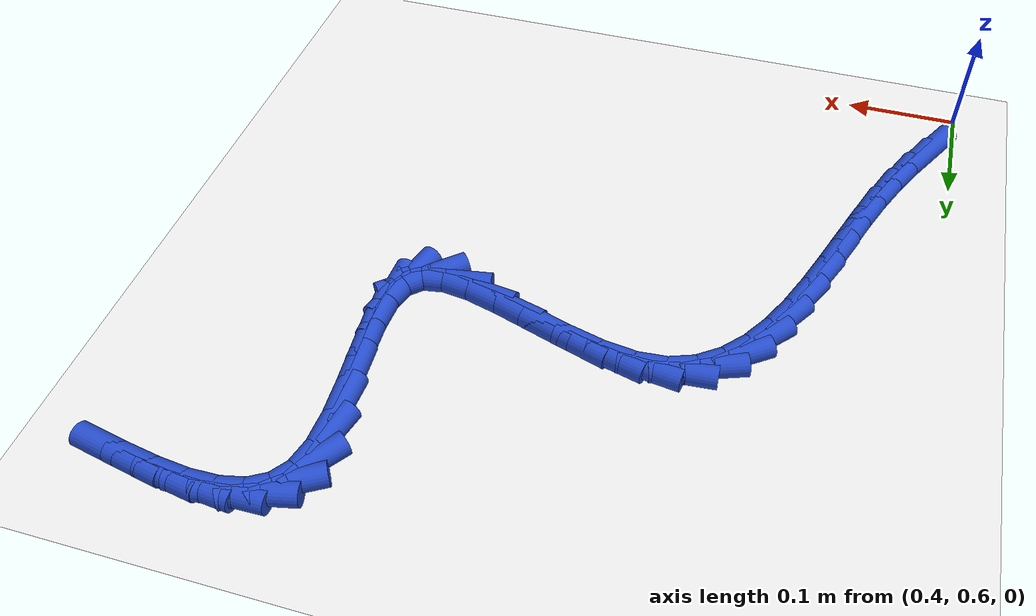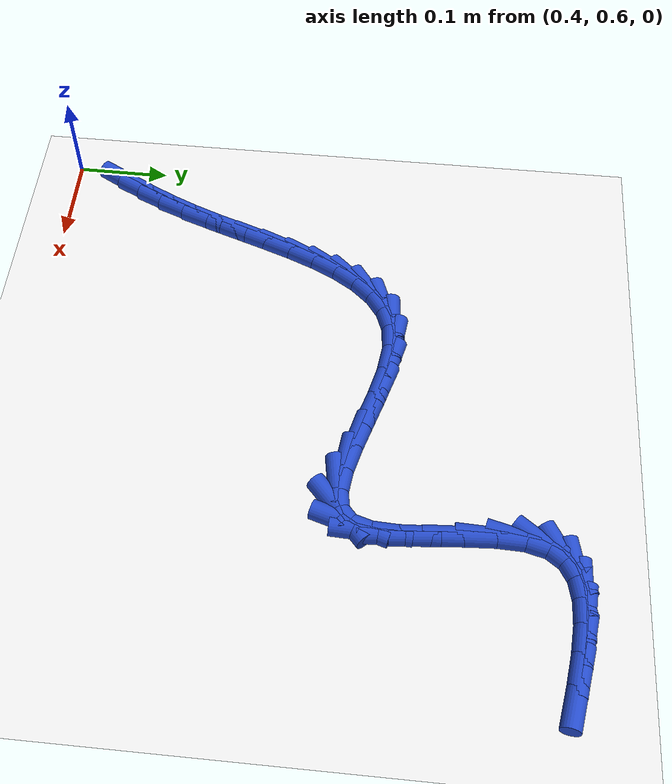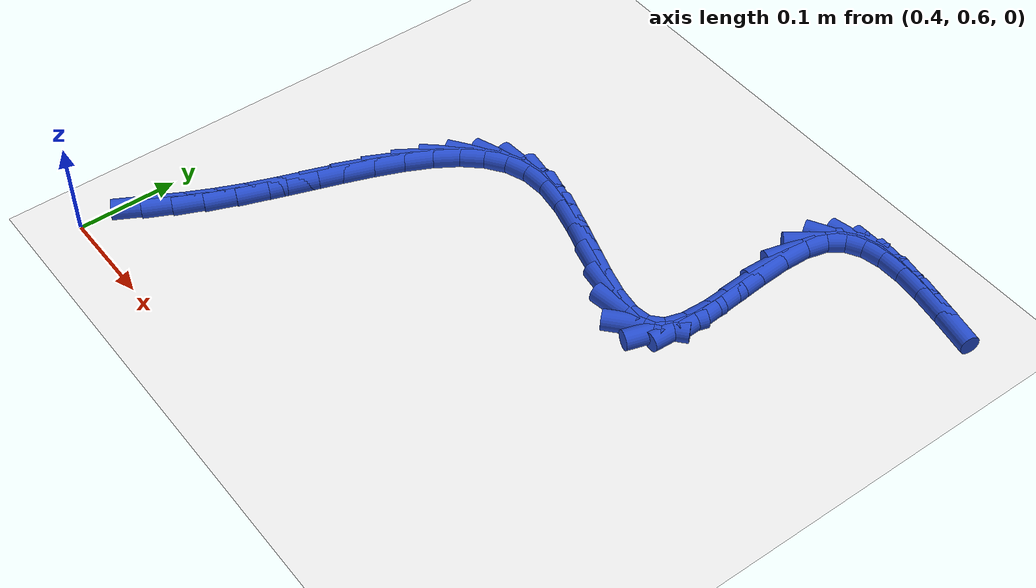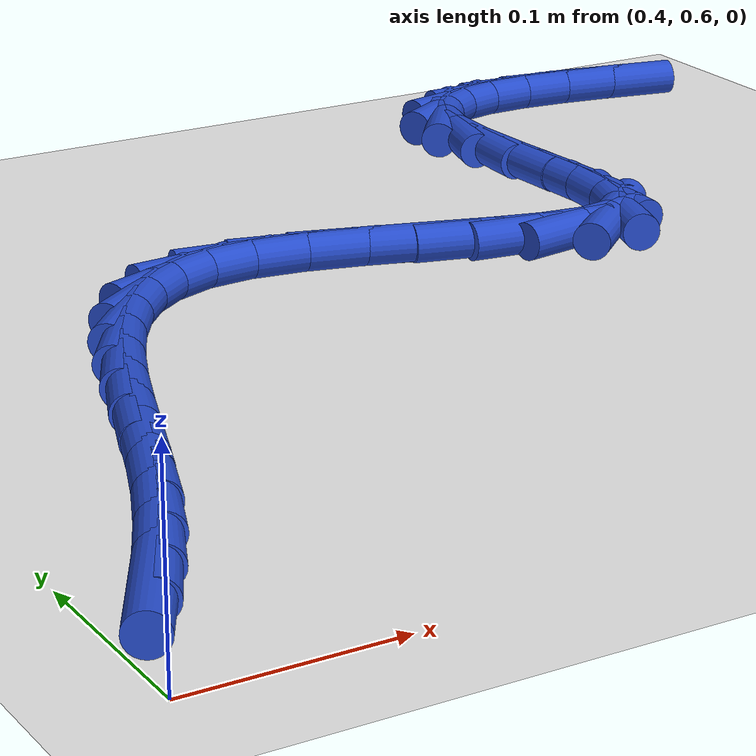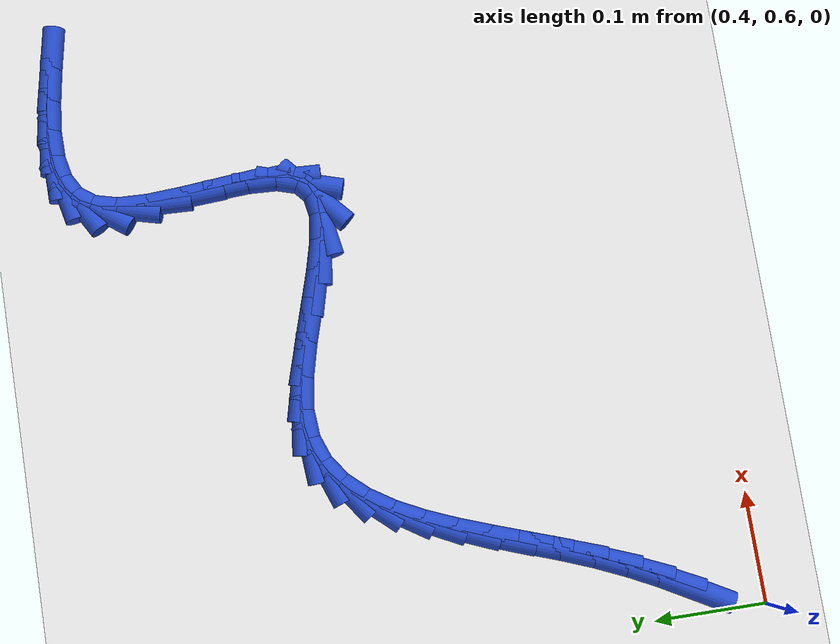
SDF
<sdf version="1.6">
 <world name="default">
  <model name="ground_plane">
   <static>1</static>
   <link name="link">
    <collision name="collision">
     <geometry><plane><normal>0 0 1</normal><size>100 100</size></plane></geometry>
     <surface><friction><ode><mu>100</mu><mu2>50</mu2></ode></friction></surface>
    </collision>
    <visual name="visual">
     <cast_shadows>0</cast_shadows>
     <geometry><plane><normal>0 0 1</normal><size>100 100</size></plane></geometry>
     <material>
      <script><uri>file://media/materials/scripts/gazebo.material</uri><name>Gazebo/WhiteGlow</name></script>
     </material>
    </visual>
   </link>
  </model>
  <model name="line">
   <link name="link_31">
    <pose>0.42566173636598037 0.6657198843054559 0.01 0 1.57 1.0625972129175245</pose>
    <collision name="collision">
     <geometry><cylinder><radius>0.01</radius><length>0.08</length></cylinder></geometry>
    </collision>
    <visual name="visual">
     <material>
      <script><name>Gazebo/Blue</name><uri>file://media/materials/scripts/gazebo.material</uri></script>
     </material>
     <geometry><cylinder><radius>0.01</radius><length>0.08</length></cylinder></geometry>
    </visual>
   </link>
   <link name="link_32">
    <pose>0.43920197734703487 0.6900292563025261 0.01 0 1.57 1.1088158944102549</pose>
    <collision name="collision">
     <geometry><cylinder><radius>0.01</radius><length>0.08</length></cylinder></geometry>
    </collision>
    <visual name="visual">
     <material>
      <script><name>Gazebo/Blue</name><uri>file://media/materials/scripts/gazebo.material</uri></script>
     </material>
     <geometry><cylinder><radius>0.01</radius><length>0.08</length></cylinder></geometry>
    </visual>
   </link>
   <link name="link_33">
    <pose>0.45195638176275393 0.7156447401489539 0.01 0 1.57 1.154847393121973</pose>
    <collision name="collision">
     <geometry><cylinder><radius>0.01</radius><length>0.08</length></cylinder></geometry>
    </collision>
    <visual name="visual">
     <material>
      <script><name>Gazebo/Blue</name><uri>file://media/materials/scripts/gazebo.material</uri></script>
     </material>
     <geometry><cylinder><radius>0.01</radius><length>0.08</length></cylinder></geometry>
    </visual>
   </link>
   <link name="link_34">
    <pose>0.4638990828241213 0.7426814102348929 0.01 0 1.57 1.1991642155798223</pose>
    <collision name="collision">
     <geometry><cylinder><radius>0.01</radius><length>0.08</length></cylinder></geometry>
    </collision>
    <visual name="visual">
     <material>
      <script><name>Gazebo/Blue</name><uri>file://media/materials/scripts/gazebo.material</uri></script>
     </material>
     <geometry><cylinder><radius>0.01</radius><length>0.08</length></cylinder></geometry>
    </visual>
   </link>
   <link name="link_35">
    <pose>0.47502176675619784 0.7712199923471602 0.01 0 1.57 1.2283384621554092</pose>
    <collision name="collision">
     <geometry><cylinder><radius>0.01</radius><length>0.08</length></cylinder></geometry>
    </collision>
    <visual name="visual">
     <material>
      <script><name>Gazebo/Blue</name><uri>file://media/materials/scripts/gazebo.material</uri></script>
     </material>
     <geometry><cylinder><radius>0.01</radius><length>0.08</length></cylinder></geometry>
    </visual>
   </link>
   <link name="link_36">
    <pose>0.4855776636415354 0.800829410357741 0.01 0 1.57 1.234318057412207</pose>
    <collision name="collision">
     <geometry><cylinder><radius>0.01</radius><length>0.08</length></cylinder></geometry>
    </collision>
    <visual name="visual">
     <material>
      <script><name>Gazebo/Blue</name><uri>file://media/materials/scripts/gazebo.material</uri></script>
     </material>
     <geometry><cylinder><radius>0.01</radius><length>0.08</length></cylinder></geometry>
    </visual>
   </link>
   <link name="link_37">
    <pose>0.49602077879622214 0.8306857012631228 0.01 0 1.57 1.2176225340649984</pose>
    <collision name="collision">
     <geometry><cylinder><radius>0.01</radius><length>0.08</length></cylinder></geometry>
    </collision>
    <visual name="visual">
     <material>
      <script><name>Gazebo/Blue</name><uri>file://media/materials/scripts/gazebo.material</uri></script>
     </material>
     <geometry><cylinder><radius>0.01</radius><length>0.08</length></cylinder></geometry>
    </visual>
   </link>
   <link name="link_38">
    <pose>0.5068102498295757 0.8599548589353737 0.01 0 1.57 1.176261530008575</pose>
    <collision name="collision">
     <geometry><cylinder><radius>0.01</radius><length>0.08</length></cylinder></geometry>
    </collision>
    <visual name="visual">
     <material>
      <script><name>Gazebo/Blue</name><uri>file://media/materials/scripts/gazebo.material</uri></script>
     </material>
     <geometry><cylinder><radius>0.01</radius><length>0.08</length></cylinder></geometry>
    </visual>
   </link>
   <link name="link_39">
    <pose>0.5184052143509137 0.8878028772465615 0.01 0 1.57 1.1051763924258355</pose>
    <collision name="collision">
     <geometry><cylinder><radius>0.01</radius><length>0.08</length></cylinder></geometry>
    </collision>
    <visual name="visual">
     <material>
      <script><name>Gazebo/Blue</name><uri>file://media/materials/scripts/gazebo.material</uri></script>
     </material>
     <geometry><cylinder><radius>0.01</radius><length>0.08</length></cylinder></geometry>
    </visual>
   </link>
   <link name="link_40">
    <pose>0.5312648099695532 0.9133957500687531 0.01 0 1.57 0.9957985428732469</pose>
    <collision name="collision">
     <geometry><cylinder><radius>0.01</radius><length>0.08</length></cylinder></geometry>
    </collision>
    <visual name="visual">
     <material>
      <script><name>Gazebo/Blue</name><uri>file://media/materials/scripts/gazebo.material</uri></script>
     </material>
     <geometry><cylinder><radius>0.01</radius><length>0.08</length></cylinder></geometry>
    </visual>
   </link>
   <link name="link_41">
    <pose>0.5458481742948121 0.9358994712740168 0.01 0 1.57 0.8366814556859311</pose>
    <collision name="collision">
     <geometry><cylinder><radius>0.01</radius><length>0.08</length></cylinder></geometry>
    </collision>
    <visual name="visual">
     <material>
      <script><name>Gazebo/Blue</name><uri>file://media/materials/scripts/gazebo.material</uri></script>
     </material>
     <geometry><cylinder><radius>0.01</radius><length>0.08</length></cylinder></geometry>
    </visual>
   </link>
   <link name="link_42">
    <pose>0.5626144449360075 0.9544800347344197 0.01 0 1.57 0.6188943193623295</pose>
    <collision name="collision">
     <geometry><cylinder><radius>0.01</radius><length>0.08</length></cylinder></geometry>
    </collision>
    <visual name="visual">
     <material>
      <script><name>Gazebo/Blue</name><uri>file://media/materials/scripts/gazebo.material</uri></script>
     </material>
     <geometry><cylinder><radius>0.01</radius><length>0.08</length></cylinder></geometry>
    </visual>
   </link>
   <link name="link_43">
    <pose>0.5820227595024572 0.9683034343220294 0.01 0 1.57 0.35061228349243506</pose>
    <collision name="collision">
     <geometry><cylinder><radius>0.01</radius><length>0.08</length></cylinder></geometry>
    </collision>
    <visual name="visual">
     <material>
      <script><name>Gazebo/Blue</name><uri>file://media/materials/scripts/gazebo.material</uri></script>
     </material>
     <geometry><cylinder><radius>0.01</radius><length>0.08</length></cylinder></geometry>
    </visual>
   </link>
   <link name="link_44">
    <pose>0.6045322556034789 0.9765356639089144 0.01 0 1.57 0.07149451687938835</pose>
    <collision name="collision">
     <geometry><cylinder><radius>0.01</radius><length>0.08</length></cylinder></geometry>
    </collision>
    <visual name="visual">
     <material>
      <script><name>Gazebo/Blue</name><uri>file://media/materials/scripts/gazebo.material</uri></script>
     </material>
     <geometry><cylinder><radius>0.01</radius><length>0.08</length></cylinder></geometry>
    </visual>
   </link>
   <link name="link_45">
    <pose>0.6305651963571177 0.9784000541030357 0.01 0 1.57 -0.13415704344314294</pose>
    <collision name="collision">
     <geometry><cylinder><radius>0.01</radius><length>0.08</length></cylinder></geometry>
    </collision>
    <visual name="visual">
     <material>
      <script><name>Gazebo/Blue</name><uri>file://media/materials/scripts/gazebo.material</uri></script>
     </material>
     <geometry><cylinder><radius>0.01</radius><length>0.08</length></cylinder></geometry>
    </visual>
   </link>
   <link name="link_46">
    <pose>0.6596748215145456 0.9744711938363129 0.01 0 1.57 -0.24690721367991458</pose>
    <collision name="collision">
     <geometry><cylinder><radius>0.01</radius><length>0.08</length></cylinder></geometry>
    </collision>
    <visual name="visual">
     <material>
      <script><name>Gazebo/Blue</name><uri>file://media/materials/scripts/gazebo.material</uri></script>
     </material>
     <geometry><cylinder><radius>0.01</radius><length>0.08</length></cylinder></geometry>
    </visual>
   </link>
   <link name="link_47">
    <pose>0.690533569530157 0.9666932440560893 0.01 0 1.57 -0.2987690628109599</pose>
    <collision name="collision">
     <geometry><cylinder><radius>0.01</radius><length>0.08</length></cylinder></geometry>
    </collision>
    <visual name="visual">
     <material>
      <script><name>Gazebo/Blue</name><uri>file://media/materials/scripts/gazebo.material</uri></script>
     </material>
     <geometry><cylinder><radius>0.01</radius><length>0.08</length></cylinder></geometry>
    </visual>
   </link>
   <link name="link_48">
    <pose>0.7217746486472709 0.9570713653919816 0.01 0 1.57 -0.3030490702650331</pose>
    <collision name="collision">
     <geometry><cylinder><radius>0.01</radius><length>0.08</length></cylinder></geometry>
    </collision>
    <visual name="visual">
     <material>
      <script><name>Gazebo/Blue</name><uri>file://media/materials/scripts/gazebo.material</uri></script>
     </material>
     <geometry><cylinder><radius>0.01</radius><length>0.08</length></cylinder></geometry>
    </visual>
   </link>
   <link name="link_49">
    <pose>0.7520312671092055 0.9476107184736068 0.01 0 1.57 -0.25567198159813986</pose>
    <collision name="collision">
     <geometry><cylinder><radius>0.01</radius><length>0.08</length></cylinder></geometry>
    </collision>
    <visual name="visual">
     <material>
      <script><name>Gazebo/Blue</name><uri>file://media/materials/scripts/gazebo.material</uri></script>
     </material>
     <geometry><cylinder><radius>0.01</radius><length>0.08</length></cylinder></geometry>
    </visual>
   </link>
   <link name="link_50">
    <pose>0.7799366331592797 0.9403164639305817 0.01 0 1.57 -0.12839466978453928</pose>
    <collision name="collision">
     <geometry><cylinder><radius>0.01</radius><length>0.08</length></cylinder></geometry>
    </collision>
    <visual name="visual">
     <material>
      <script><name>Gazebo/Blue</name><uri>file://media/materials/scripts/gazebo.material</uri></script>
     </material>
     <geometry><cylinder><radius>0.01</radius><length>0.08</length></cylinder></geometry>
    </visual>
   </link>
   <link name="link_51">
    <pose>0.804123955040812 0.9371937623925232 0.01 0 1.57 0.15853348989814392</pose>
    <collision name="collision">
     <geometry><cylinder><radius>0.01</radius><length>0.08</length></cylinder></geometry>
    </collision>
    <visual name="visual">
     <material>
      <script><name>Gazebo/Blue</name><uri>file://media/materials/scripts/gazebo.material</uri></script>
     </material>
     <geometry><cylinder><radius>0.01</radius><length>0.08</length></cylinder></geometry>
    </visual>
   </link>
   <link name="link_52">
    <pose>0.8232264409971214 0.940247774489048 0.01 0 1.57 0.7243325198861073</pose>
    <collision name="collision">
     <geometry><cylinder><radius>0.01</radius><length>0.08</length></cylinder></geometry>
    </collision>
    <visual name="visual">
     <material>
      <script><name>Gazebo/Blue</name><uri>file://media/materials/scripts/gazebo.material</uri></script>
     </material>
     <geometry><cylinder><radius>0.01</radius><length>0.08</length></cylinder></geometry>
    </visual>
   </link>
   <link name="link_53">
    <pose>0.8358965639742957 0.9514578240350775 0.01 0 1.57 1.2713635657957663</pose>
    <collision name="collision">
     <geometry><cylinder><radius>0.01</radius><length>0.08</length></cylinder></geometry>
    </collision>
    <visual name="visual">
     <material>
      <script><name>Gazebo/Blue</name><uri>file://media/materials/scripts/gazebo.material</uri></script>
     </material>
     <geometry><cylinder><radius>0.01</radius><length>0.08</length></cylinder></geometry>
    </visual>
   </link>
   <link name="link_54">
    <pose>0.8419886168684114 0.9711914166039304 0.01 0 1.57 1.5226162879572358</pose>
    <collision name="collision">
     <geometry><cylinder><radius>0.01</radius><length>0.08</length></cylinder></geometry>
    </collision>
    <visual name="visual">
     <material>
      <script><name>Gazebo/Blue</name><uri>file://media/materials/scripts/gazebo.material</uri></script>
     </material>
     <geometry><cylinder><radius>0.01</radius><length>0.08</length></cylinder></geometry>
    </visual>
   </link>
   <link name="link_55">
    <pose>0.8432466191284564 0.9972816550660388 0.01 0 1.57 -1.5154167701613044</pose>
    <collision name="collision">
     <geometry><cylinder><radius>0.01</radius><length>0.08</length></cylinder></geometry>
    </collision>
    <visual name="visual">
     <material>
      <script><name>Gazebo/Blue</name><uri>file://media/materials/scripts/gazebo.material</uri></script>
     </material>
     <geometry><cylinder><radius>0.01</radius><length>0.08</length></cylinder></geometry>
    </visual>
   </link>
   <link name="link_56">
    <pose>0.8415803331607533 1.0273393564810083 0.01 0 1.57 -1.4862589606676913</pose>
    <collision name="collision">
     <geometry><cylinder><radius>0.01</radius><length>0.08</length></cylinder></geometry>
    </collision>
    <visual name="visual">
     <material>
      <script><name>Gazebo/Blue</name><uri>file://media/materials/scripts/gazebo.material</uri></script>
     </material>
     <geometry><cylinder><radius>0.01</radius><length>0.08</length></cylinder></geometry>
    </visual>
   </link>
   <link name="link_57">
    <pose>0.8388995213716254 1.058975337908444 0.01 0 1.57 -1.512934930191467</pose>
    <collision name="collision">
     <geometry><cylinder><radius>0.01</radius><length>0.08</length></cylinder></geometry>
    </collision>
    <visual name="visual">
     <material>
      <script><name>Gazebo/Blue</name><uri>file://media/materials/scripts/gazebo.material</uri></script>
     </material>
     <geometry><cylinder><radius>0.01</radius><length>0.08</length></cylinder></geometry>
    </visual>
   </link>
   <link name="link_58">
    <pose>0.8371139461673955 1.089800416407951 0.01 0 1.57 1.5339108355819402</pose>
    <collision name="collision">
     <geometry><cylinder><radius>0.01</radius><length>0.08</length></cylinder></geometry>
    </collision>
    <visual name="visual">
     <material>
      <script><name>Gazebo/Blue</name><uri>file://media/materials/scripts/gazebo.material</uri></script>
     </material>
     <geometry><cylinder><radius>0.01</radius><length>0.08</length></cylinder></geometry>
    </visual>
   </link>
   <link name="link_59">
    <pose>0.8381333699543873 1.1174254090391353 0.01 0 1.57 1.3171862648424288</pose>
    <collision name="collision">
     <geometry><cylinder><radius>0.01</radius><length>0.08</length></cylinder></geometry>
    </collision>
    <visual name="visual">
     <material>
      <script><name>Gazebo/Blue</name><uri>file://media/materials/scripts/gazebo.material</uri></script>
     </material>
     <geometry><cylinder><radius>0.01</radius><length>0.08</length></cylinder></geometry>
    </visual>
   </link>
   <link name="link_60">
    <pose>0.8438505186536222 1.1394830824033557 0.01 0 1.57 0.9351210997044489</pose>
    <collision name="collision">
     <geometry><cylinder><radius>0.01</radius><length>0.08</length></cylinder></geometry>
    </collision>
    <visual name="visual">
     <material>
      <script><name>Gazebo/Blue</name><uri>file://media/materials/scripts/gazebo.material</uri></script>
     </material>
     <geometry><cylinder><radius>0.01</radius><length>0.08</length></cylinder></geometry>
    </visual>
   </link>
   <link name="link_61">
    <pose>0.8551907611300613 1.1548525308342499 0.01 0 1.57 0.5223403211299958</pose>
    <collision name="collision">
     <geometry><cylinder><radius>0.01</radius><length>0.08</length></cylinder></geometry>
    </collision>
    <visual name="visual">
     <material>
      <script><name>Gazebo/Blue</name><uri>file://media/materials/scripts/gazebo.material</uri></script>
     </material>
     <geometry><cylinder><radius>0.01</radius><length>0.08</length></cylinder></geometry>
    </visual>
   </link>
   <link name="link_62">
    <pose>0.871610769142672 1.1643050950930323 0.01 0 1.57 0.21113501775359536</pose>
    <collision name="collision">
     <geometry><cylinder><radius>0.01</radius><length>0.08</length></cylinder></geometry>
    </collision>
    <visual name="visual">
     <material>
      <script><name>Gazebo/Blue</name><uri>file://media/materials/scripts/gazebo.material</uri></script>
     </material>
     <geometry><cylinder><radius>0.01</radius><length>0.08</length></cylinder></geometry>
    </visual>
   </link>
   <link name="link_63">
    <pose>0.8924443968549333 1.1687703522139747 0.01 0 1.57 0.016577356583463376</pose>
    <collision name="collision">
     <geometry><cylinder><radius>0.01</radius><length>0.08</length></cylinder></geometry>
    </collision>
    <visual name="visual">
     <material>
      <script><name>Gazebo/Blue</name><uri>file://media/materials/scripts/gazebo.material</uri></script>
     </material>
     <geometry><cylinder><radius>0.01</radius><length>0.08</length></cylinder></geometry>
    </visual>
   </link>
   <link name="link_64">
    <pose>0.9170254984303244 1.1691778792313519 0.01 0 1.57 -0.09803565814863689</pose>
    <collision name="collision">
     <geometry><cylinder><radius>0.01</radius><length>0.08</length></cylinder></geometry>
    </collision>
    <visual name="visual">
     <material>
      <script><name>Gazebo/Blue</name><uri>file://media/materials/scripts/gazebo.material</uri></script>
     </material>
     <geometry><cylinder><radius>0.01</radius><length>0.08</length></cylinder></geometry>
    </visual>
   </link>
   <link name="link_65">
    <pose>0.9446879280323245 1.166457253179436 0.01 0 1.57 -0.16211500192336245</pose>
    <collision name="collision">
     <geometry><cylinder><radius>0.01</radius><length>0.08</length></cylinder></geometry>
    </collision>
    <visual name="visual">
     <material>
      <script><name>Gazebo/Blue</name><uri>file://media/materials/scripts/gazebo.material</uri></script>
     </material>
     <geometry><cylinder><radius>0.01</radius><length>0.08</length></cylinder></geometry>
    </visual>
   </link>
   <link name="link_66">
    <pose>0.9747655398244128 1.1615380510925002 0.01 0 1.57 -0.192038515866562</pose>
    <collision name="collision">
     <geometry><cylinder><radius>0.01</radius><length>0.08</length></cylinder></geometry>
    </collision>
    <visual name="visual">
     <material>
      <script><name>Gazebo/Blue</name><uri>file://media/materials/scripts/gazebo.material</uri></script>
     </material>
     <geometry><cylinder><radius>0.01</radius><length>0.08</length></cylinder></geometry>
    </visual>
   </link>
  </model>
 </world>
</sdf>
